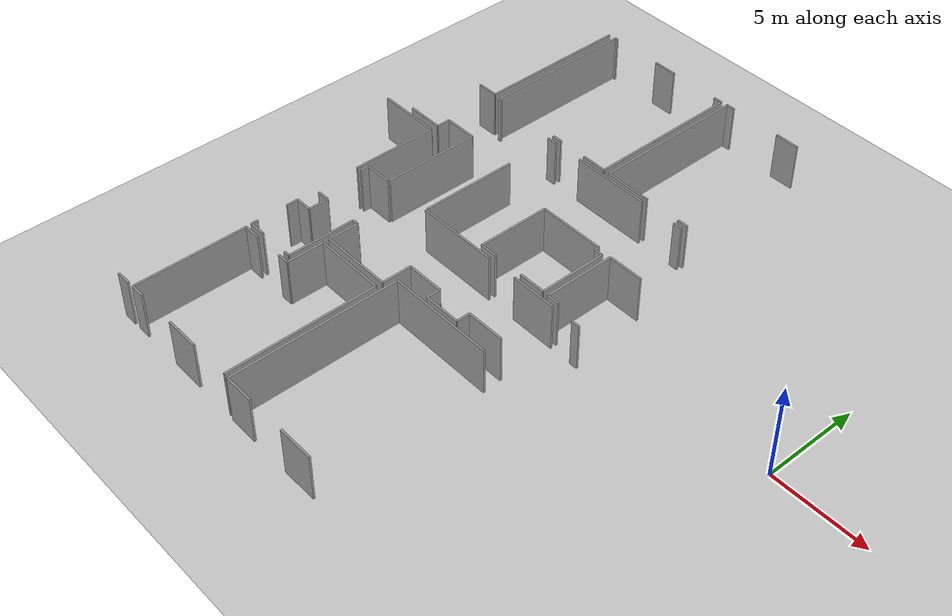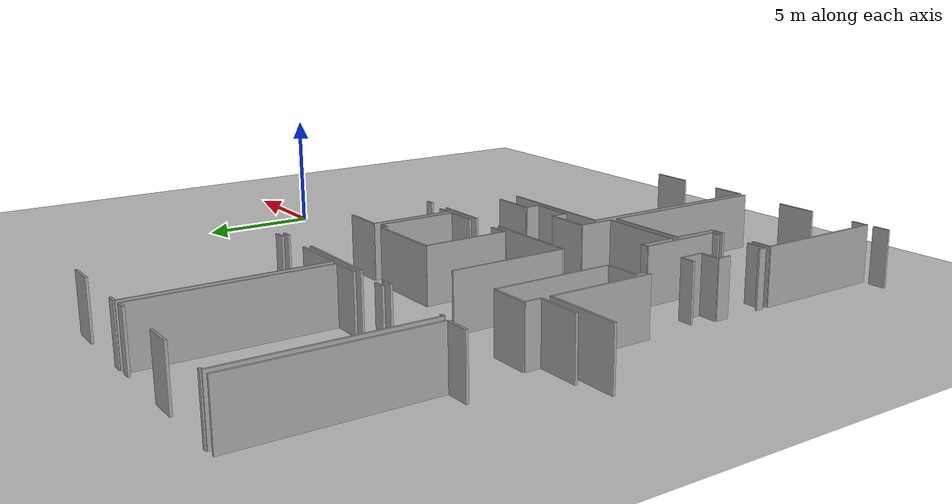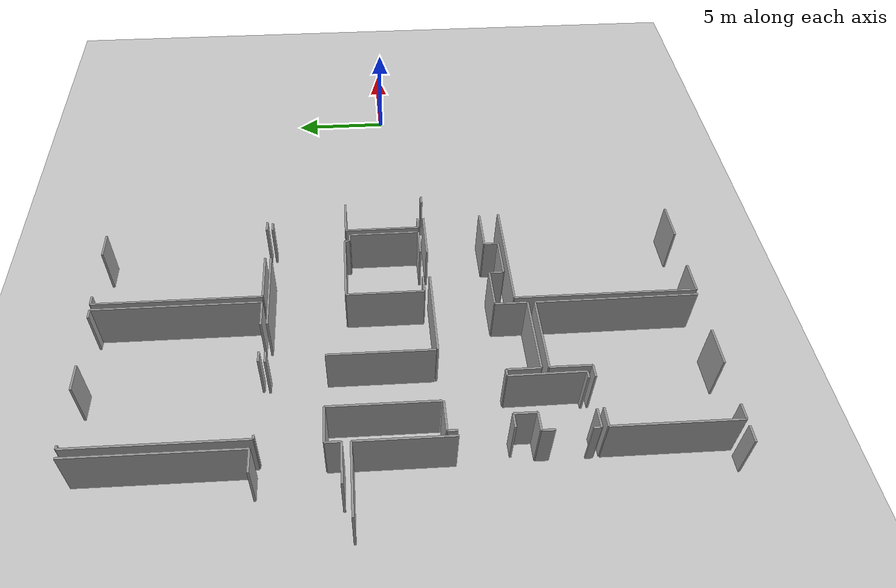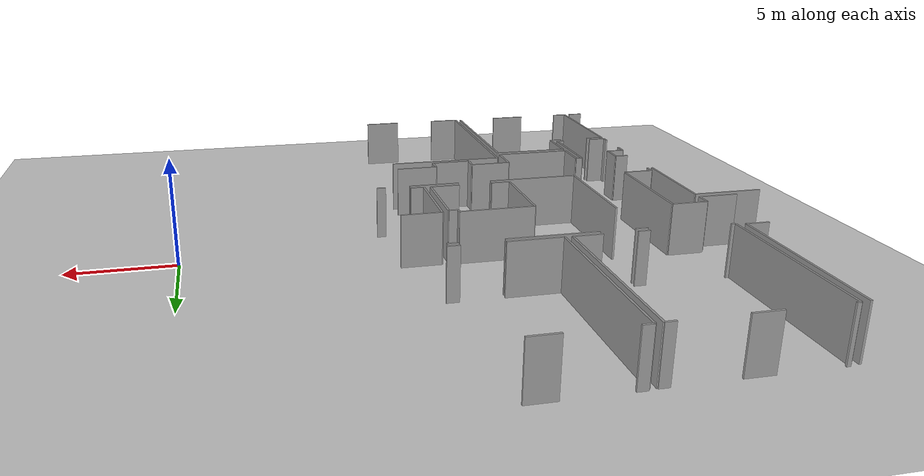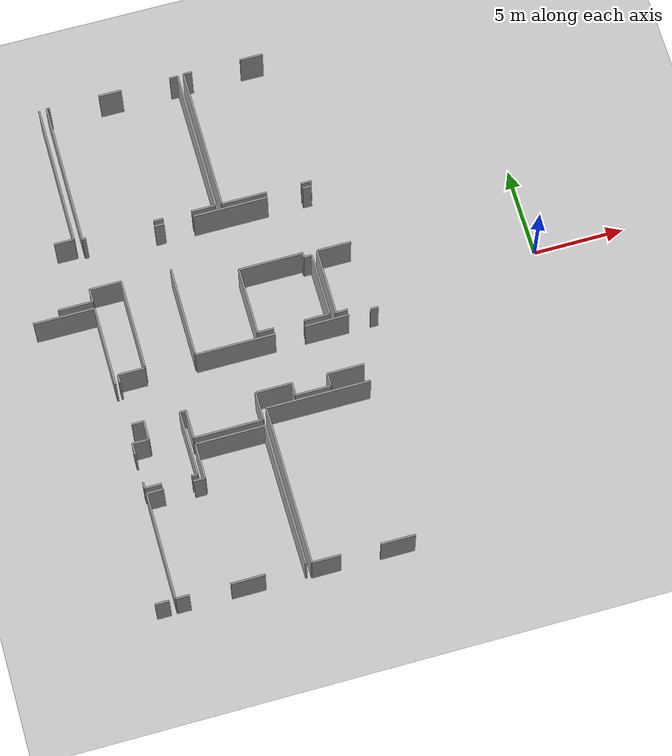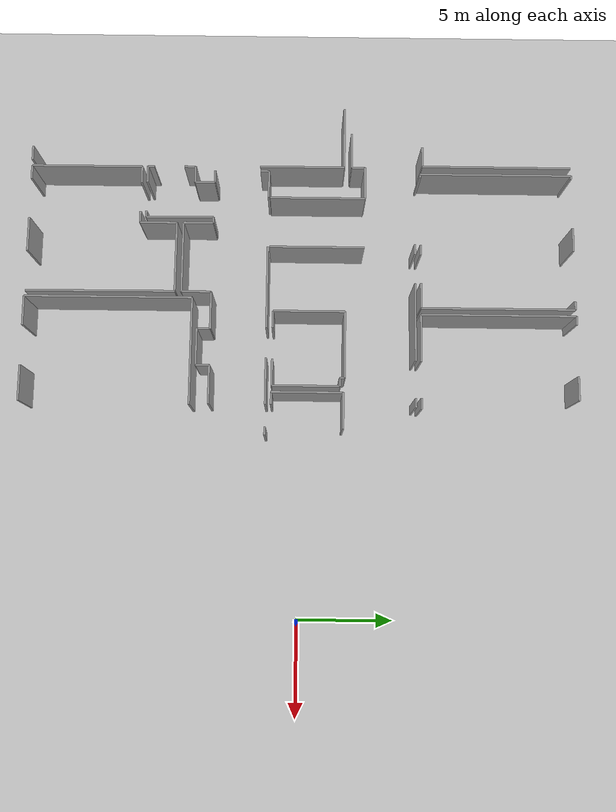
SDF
<sdf version="1.6">
 <world name="default">
  <model name="ground_plane">
   <static>1</static>
   <link name="link">
    <collision name="collision">
     <geometry><plane><normal>0 0 1</normal><size>100 100</size></plane></geometry>
     <surface><friction><ode><mu>100</mu><mu2>50</mu2></ode></friction></surface>
    </collision>
    <visual name="visual">
     <cast_shadows>0</cast_shadows>
     <geometry><plane><normal>0 0 1</normal><size>100 100</size></plane></geometry>
     <material>
      <script><uri>file://media/materials/scripts/gazebo.material</uri><name>Gazebo/Grey</name></script>
     </material>
    </visual>
   </link>
  </model>
  <model name="0510032262_A_40_1_104">
   <static>1</static>
   <link name="Wall_21">
    <collision name="Wall_21_Collision">
     <geometry><box><size>0.548910112003 0.1 2.5</size></box></geometry>
     <pose>0.274455056002 0 1.25 0 0 0</pose>
    </collision>
    <visual name="Wall_21_Visual">
     <pose>0.274455056002 0 1.25 0 0 0</pose>
     <geometry><box><size>0.548910112003 0.1 2.5</size></box></geometry>
     <material>
      <script><uri>file://media/materials/scripts/gazebo.material</uri><name>Gazebo/Grey</name></script>
      <ambient>1 1 1 1</ambient>
     </material>
    </visual>
    <pose>27.9376844243 -8.39673826824 0 0 0 0.0</pose>
   </link>
   <link name="Wall_22">
    <collision name="Wall_22_Collision">
     <geometry><box><size>4.13668813656 0.1 2.5</size></box></geometry>
     <pose>2.06834406828 0 1.25 0 0 0</pose>
    </collision>
    <visual name="Wall_22_Visual">
     <pose>2.06834406828 0 1.25 0 0 0</pose>
     <geometry><box><size>4.13668813656 0.1 2.5</size></box></geometry>
     <material>
      <script><uri>file://media/materials/scripts/gazebo.material</uri><name>Gazebo/Grey</name></script>
      <ambient>1 1 1 1</ambient>
     </material>
    </visual>
    <pose>30.0883967383 -8.39673826824 0 0 0 0.0</pose>
   </link>
   <link name="Wall_23">
    <collision name="Wall_23_Collision">
     <geometry><box><size>0.481771742234 0.1 2.5</size></box></geometry>
     <pose>0.240885871117 0 1.25 0 0 0</pose>
    </collision>
    <visual name="Wall_23_Visual">
     <pose>0.240885871117 0 1.25 0 0 0</pose>
     <geometry><box><size>0.481771742234 0.1 2.5</size></box></geometry>
     <material>
      <script><uri>file://media/materials/scripts/gazebo.material</uri><name>Gazebo/Grey</name></script>
      <ambient>1 1 1 1</ambient>
     </material>
    </visual>
    <pose>36.1908811118 -8.39673826824 0 0 0 0.0</pose>
   </link>
   <link name="Wall_34">
    <collision name="Wall_34_Collision">
     <geometry><box><size>5.01519814703 0.1 2.5</size></box></geometry>
     <pose>2.50759907352 0 1.25 0 0 0</pose>
    </collision>
    <visual name="Wall_34_Visual">
     <pose>2.50759907352 0 1.25 0 0 0</pose>
     <geometry><box><size>5.01519814703 0.1 2.5</size></box></geometry>
     <material>
      <script><uri>file://media/materials/scripts/gazebo.material</uri><name>Gazebo/Grey</name></script>
      <ambient>1 1 1 1</ambient>
     </material>
    </visual>
    <pose>28.161436685 -11.0702160739 0 0 0 -1.57079632679</pose>
   </link>
   <link name="Wall_35">
    <collision name="Wall_35_Collision">
     <geometry><box><size>5.04540406765 0.1 2.5</size></box></geometry>
     <pose>2.52270203382 0 1.25 0 0 0</pose>
    </collision>
    <visual name="Wall_35_Visual">
     <pose>2.52270203382 0 1.25 0 0 0</pose>
     <geometry><box><size>5.04540406765 0.1 2.5</size></box></geometry>
     <material>
      <script><uri>file://media/materials/scripts/gazebo.material</uri><name>Gazebo/Grey</name></script>
      <ambient>1 1 1 1</ambient>
     </material>
    </visual>
    <pose>25.4436653235 -16.0854142209 0 0 0 1.57079632679</pose>
   </link>
   <link name="Wall_36">
    <collision name="Wall_36_Collision">
     <geometry><box><size>1.72744867849 0.1 2.5</size></box></geometry>
     <pose>0.863724339245 0 1.25 0 0 0</pose>
    </collision>
    <visual name="Wall_36_Visual">
     <pose>0.863724339245 0 1.25 0 0 0</pose>
     <geometry><box><size>1.72744867849 0.1 2.5</size></box></geometry>
     <material>
      <script><uri>file://media/materials/scripts/gazebo.material</uri><name>Gazebo/Grey</name></script>
      <ambient>1 1 1 1</ambient>
     </material>
    </visual>
    <pose>25.4436653235 -11.0400101533 0 0 0 3.14159265359</pose>
   </link>
   <link name="Wall_37">
    <collision name="Wall_37_Collision">
     <geometry><box><size>0.710092965701 0.1 2.5</size></box></geometry>
     <pose>0.355046482851 0 1.25 0 0 0</pose>
    </collision>
    <visual name="Wall_37_Visual">
     <pose>0.355046482851 0 1.25 0 0 0</pose>
     <geometry><box><size>0.710092965701 0.1 2.5</size></box></geometry>
     <material>
      <script><uri>file://media/materials/scripts/gazebo.material</uri><name>Gazebo/Grey</name></script>
      <ambient>1 1 1 1</ambient>
     </material>
    </visual>
    <pose>23.716216645 -11.0400101533 0 0 0 -1.57079632679</pose>
   </link>
   <link name="Wall_38">
    <collision name="Wall_38_Collision">
     <geometry><box><size>1.90969952724 0.1 2.5</size></box></geometry>
     <pose>0.95484976362 0 1.25 0 0 0</pose>
    </collision>
    <visual name="Wall_38_Visual">
     <pose>0.95484976362 0 1.25 0 0 0</pose>
     <geometry><box><size>1.90969952724 0.1 2.5</size></box></geometry>
     <material>
      <script><uri>file://media/materials/scripts/gazebo.material</uri><name>Gazebo/Grey</name></script>
      <ambient>1 1 1 1</ambient>
     </material>
    </visual>
    <pose>23.716216645 -11.750103119 0 0 0 3.14159265359</pose>
   </link>
   <link name="Wall_47">
    <collision name="Wall_47_Collision">
     <geometry><box><size>1.08855538281 0.1 2.5</size></box></geometry>
     <pose>0.544277691405 0 1.25 0 0 0</pose>
    </collision>
    <visual name="Wall_47_Visual">
     <pose>0.544277691405 0 1.25 0 0 0</pose>
     <geometry><box><size>1.08855538281 0.1 2.5</size></box></geometry>
     <material>
      <script><uri>file://media/materials/scripts/gazebo.material</uri><name>Gazebo/Grey</name></script>
      <ambient>1 1 1 1</ambient>
     </material>
    </visual>
    <pose>23.6099882603 -7.97271313894 0 0 0 3.14159265359</pose>
   </link>
   <link name="Wall_51">
    <collision name="Wall_51_Collision">
     <geometry><box><size>7.91421825741 0.1 2.5</size></box></geometry>
     <pose>3.9571091287 0 1.25 0 0 0</pose>
    </collision>
    <visual name="Wall_51_Visual">
     <pose>3.9571091287 0 1.25 0 0 0</pose>
     <geometry><box><size>7.91421825741 0.1 2.5</size></box></geometry>
     <material>
      <script><uri>file://media/materials/scripts/gazebo.material</uri><name>Gazebo/Grey</name></script>
      <ambient>1 1 1 1</ambient>
     </material>
    </visual>
    <pose>23.6244566424 -0.058508106736 0 0 0 -1.57262447832</pose>
   </link>
   <link name="Wall_52">
    <collision name="Wall_52_Collision">
     <geometry><box><size>1.34238664848 0.1 2.5</size></box></geometry>
     <pose>0.671193324238 0 1.25 0 0 0</pose>
    </collision>
    <visual name="Wall_52_Visual">
     <pose>0.671193324238 0 1.25 0 0 0</pose>
     <geometry><box><size>1.34238664848 0.1 2.5</size></box></geometry>
     <material>
      <script><uri>file://media/materials/scripts/gazebo.material</uri><name>Gazebo/Grey</name></script>
      <ambient>1 1 1 1</ambient>
     </material>
    </visual>
    <pose>31.4178379922 -8.09607513405 0 0 0 3.14159265359</pose>
   </link>
   <link name="Wall_53">
    <collision name="Wall_53_Collision">
     <geometry><box><size>0.53444172986 0.1 2.5</size></box></geometry>
     <pose>0.26722086493 0 1.25 0 0 0</pose>
    </collision>
    <visual name="Wall_53_Visual">
     <pose>0.26722086493 0 1.25 0 0 0</pose>
     <geometry><box><size>0.53444172986 0.1 2.5</size></box></geometry>
     <material>
      <script><uri>file://media/materials/scripts/gazebo.material</uri><name>Gazebo/Grey</name></script>
      <ambient>1 1 1 1</ambient>
     </material>
    </visual>
    <pose>28.5099470127 -8.09607513405 0 0 0 3.14159265359</pose>
   </link>
   <link name="Wall_54">
    <collision name="Wall_54_Collision">
     <geometry><box><size>0.195576990196 0.1 2.5</size></box></geometry>
     <pose>0.0977884950979 0 1.25 0 0 0</pose>
    </collision>
    <visual name="Wall_54_Visual">
     <pose>0.0977884950979 0 1.25 0 0 0</pose>
     <geometry><box><size>0.195576990196 0.1 2.5</size></box></geometry>
     <material>
      <script><uri>file://media/materials/scripts/gazebo.material</uri><name>Gazebo/Grey</name></script>
      <ambient>1 1 1 1</ambient>
     </material>
    </visual>
    <pose>24.2399974617 -8.09607513405 0 0 0 3.14159265359</pose>
   </link>
   <link name="Wall_55">
    <collision name="Wall_55_Collision">
     <geometry><box><size>8.05431989085 0.1 2.5</size></box></geometry>
     <pose>4.02715994543 0 1.25 0 0 0</pose>
    </collision>
    <visual name="Wall_55_Visual">
     <pose>4.02715994543 0 1.25 0 0 0</pose>
     <geometry><box><size>8.05431989085 0.1 2.5</size></box></geometry>
     <material>
      <script><uri>file://media/materials/scripts/gazebo.material</uri><name>Gazebo/Grey</name></script>
      <ambient>1 1 1 1</ambient>
     </material>
    </visual>
    <pose>24.0444204715 -8.09607513405 0 0 0 1.57079632679</pose>
   </link>
   <link name="Wall_56">
    <collision name="Wall_56_Collision">
     <geometry><box><size>0.17247834502 0.1 2.5</size></box></geometry>
     <pose>0.0862391725101 0 1.25 0 0 0</pose>
    </collision>
    <visual name="Wall_56_Visual">
     <pose>0.0862391725101 0 1.25 0 0 0</pose>
     <geometry><box><size>0.17247834502 0.1 2.5</size></box></geometry>
     <material>
      <script><uri>file://media/materials/scripts/gazebo.material</uri><name>Gazebo/Grey</name></script>
      <ambient>1 1 1 1</ambient>
     </material>
    </visual>
    <pose>24.0444204715 -0.0417552432021 0 0 0 0.0</pose>
   </link>
   <link name="Wall_57">
    <collision name="Wall_57_Collision">
     <geometry><box><size>1.27385220675 0.1 2.5</size></box></geometry>
     <pose>0.636926103373 0 1.25 0 0 0</pose>
    </collision>
    <visual name="Wall_57_Visual">
     <pose>0.636926103373 0 1.25 0 0 0</pose>
     <geometry><box><size>1.27385220675 0.1 2.5</size></box></geometry>
     <material>
      <script><uri>file://media/materials/scripts/gazebo.material</uri><name>Gazebo/Grey</name></script>
      <ambient>1 1 1 1</ambient>
     </material>
    </visual>
    <pose>26.958530317 -0.0417552432021 0 0 0 0.0</pose>
   </link>
   <link name="Wall_58">
    <collision name="Wall_58_Collision">
     <geometry><box><size>0.458038518895 0.1 2.5</size></box></geometry>
     <pose>0.229019259447 0 1.25 0 0 0</pose>
    </collision>
    <visual name="Wall_58_Visual">
     <pose>0.229019259447 0 1.25 0 0 0</pose>
     <geometry><box><size>0.458038518895 0.1 2.5</size></box></geometry>
     <material>
      <script><uri>file://media/materials/scripts/gazebo.material</uri><name>Gazebo/Grey</name></script>
      <ambient>1 1 1 1</ambient>
     </material>
    </visual>
    <pose>30.9520576197 -0.0417552432021 0 0 0 0.0</pose>
   </link>
   <link name="Wall_59">
    <collision name="Wall_59_Collision">
     <geometry><box><size>8.05432361161 0.1 2.5</size></box></geometry>
     <pose>4.0271618058 0 1.25 0 0 0</pose>
    </collision>
    <visual name="Wall_59_Visual">
     <pose>4.0271618058 0 1.25 0 0 0</pose>
     <geometry><box><size>8.05432361161 0.1 2.5</size></box></geometry>
     <material>
      <script><uri>file://media/materials/scripts/gazebo.material</uri><name>Gazebo/Grey</name></script>
      <ambient>1 1 1 1</ambient>
     </material>
    </visual>
    <pose>31.4100961386 -0.0417552432021 0 0 0 -1.56983512196</pose>
   </link>
   <link name="Wall_61">
    <collision name="Wall_61_Collision">
     <geometry><box><size>0.575816226164 0.1 2.5</size></box></geometry>
     <pose>0.287908113082 0 1.25 0 0 0</pose>
    </collision>
    <visual name="Wall_61_Visual">
     <pose>0.287908113082 0 1.25 0 0 0</pose>
     <geometry><box><size>0.575816226164 0.1 2.5</size></box></geometry>
     <material>
      <script><uri>file://media/materials/scripts/gazebo.material</uri><name>Gazebo/Grey</name></script>
      <ambient>1 1 1 1</ambient>
     </material>
    </visual>
    <pose>36.7580670749 -8.1105435162 0 0 0 3.14159265359</pose>
   </link>
   <link name="Wall_62">
    <collision name="Wall_62_Collision">
     <geometry><box><size>2.4951613415 0.1 2.5</size></box></geometry>
     <pose>1.24758067075 0 1.25 0 0 0</pose>
    </collision>
    <visual name="Wall_62_Visual">
     <pose>1.24758067075 0 1.25 0 0 0</pose>
     <geometry><box><size>2.4951613415 0.1 2.5</size></box></geometry>
     <material>
      <script><uri>file://media/materials/scripts/gazebo.material</uri><name>Gazebo/Grey</name></script>
      <ambient>1 1 1 1</ambient>
     </material>
    </visual>
    <pose>34.253387061 -8.1105435162 0 0 0 3.14159265359</pose>
   </link>
   <link name="Wall_63">
    <collision name="Wall_63_Collision">
     <geometry><box><size>8.1105435162 0.1 2.5</size></box></geometry>
     <pose>4.0552717581 0 1.25 0 0 0</pose>
    </collision>
    <visual name="Wall_63_Visual">
     <pose>4.0552717581 0 1.25 0 0 0</pose>
     <geometry><box><size>8.1105435162 0.1 2.5</size></box></geometry>
     <material>
      <script><uri>file://media/materials/scripts/gazebo.material</uri><name>Gazebo/Grey</name></script>
      <ambient>1 1 1 1</ambient>
     </material>
    </visual>
    <pose>31.7582257195 -8.1105435162 0 0 0 1.57079632679</pose>
   </link>
   <link name="Wall_64">
    <collision name="Wall_64_Collision">
     <geometry><box><size>0.461465240981 0.1 2.5</size></box></geometry>
     <pose>0.230732620491 0 1.25 0 0 0</pose>
    </collision>
    <visual name="Wall_64_Visual">
     <pose>0.230732620491 0 1.25 0 0 0</pose>
     <geometry><box><size>0.461465240981 0.1 2.5</size></box></geometry>
     <material>
      <script><uri>file://media/materials/scripts/gazebo.material</uri><name>Gazebo/Grey</name></script>
      <ambient>1 1 1 1</ambient>
     </material>
    </visual>
    <pose>31.7582257195 -0.0 0 0 0 0.0</pose>
   </link>
   <link name="Wall_65">
    <collision name="Wall_65_Collision">
     <geometry><box><size>1.28514769807 0.1 2.5</size></box></geometry>
     <pose>0.642573849034 0 1.25 0 0 0</pose>
    </collision>
    <visual name="Wall_65_Visual">
     <pose>0.642573849034 0 1.25 0 0 0</pose>
     <geometry><box><size>1.28514769807 0.1 2.5</size></box></geometry>
     <material>
      <script><uri>file://media/materials/scripts/gazebo.material</uri><name>Gazebo/Grey</name></script>
      <ambient>1 1 1 1</ambient>
     </material>
    </visual>
    <pose>34.948503982 -0.0 0 0 0 0.0</pose>
   </link>
   <link name="Wall_86">
    <collision name="Wall_86_Collision">
     <geometry><box><size>4.49179807723 0.1 2.5</size></box></geometry>
     <pose>2.24589903861 0 1.25 0 0 0</pose>
    </collision>
    <visual name="Wall_86_Visual">
     <pose>2.24589903861 0 1.25 0 0 0</pose>
     <geometry><box><size>4.49179807723 0.1 2.5</size></box></geometry>
     <material>
      <script><uri>file://media/materials/scripts/gazebo.material</uri><name>Gazebo/Grey</name></script>
      <ambient>1 1 1 1</ambient>
     </material>
    </visual>
    <pose>23.709997779 -16.6434622585 0 0 0 1.57079632679</pose>
   </link>
   <link name="Wall_87">
    <collision name="Wall_87_Collision">
     <geometry><box><size>3.34003870927 0.1 2.5</size></box></geometry>
     <pose>1.67001935463 0 1.25 0 0 0</pose>
    </collision>
    <visual name="Wall_87_Visual">
     <pose>1.67001935463 0 1.25 0 0 0</pose>
     <geometry><box><size>3.34003870927 0.1 2.5</size></box></geometry>
     <material>
      <script><uri>file://media/materials/scripts/gazebo.material</uri><name>Gazebo/Grey</name></script>
      <ambient>1 1 1 1</ambient>
     </material>
    </visual>
    <pose>23.709997779 -12.1516641812 0 0 0 3.14159265359</pose>
   </link>
   <link name="Wall_111">
    <collision name="Wall_111_Collision">
     <geometry><box><size>0.771012469461 0.1 2.5</size></box></geometry>
     <pose>0.38550623473 0 1.25 0 0 0</pose>
    </collision>
    <visual name="Wall_111_Visual">
     <pose>0.38550623473 0 1.25 0 0 0</pose>
     <geometry><box><size>0.771012469461 0.1 2.5</size></box></geometry>
     <material>
      <script><uri>file://media/materials/scripts/gazebo.material</uri><name>Gazebo/Grey</name></script>
      <ambient>1 1 1 1</ambient>
     </material>
    </visual>
    <pose>23.458704826 -28.8584573405 0 0 0 3.14159265359</pose>
   </link>
   <link name="Wall_118">
    <collision name="Wall_118_Collision">
     <geometry><box><size>1.83888060412 0.1 2.5</size></box></geometry>
     <pose>0.919440302059 0 1.25 0 0 0</pose>
    </collision>
    <visual name="Wall_118_Visual">
     <pose>0.919440302059 0 1.25 0 0 0</pose>
     <geometry><box><size>1.83888060412 0.1 2.5</size></box></geometry>
     <material>
      <script><uri>file://media/materials/scripts/gazebo.material</uri><name>Gazebo/Grey</name></script>
      <ambient>1 1 1 1</ambient>
     </material>
    </visual>
    <pose>28.5327918266 -28.8483040899 0 0 0 3.14159265359</pose>
   </link>
   <link name="Wall_119">
    <collision name="Wall_119_Collision">
     <geometry><box><size>0.740171970682 0.1 2.5</size></box></geometry>
     <pose>0.370085985341 0 1.25 0 0 0</pose>
    </collision>
    <visual name="Wall_119_Visual">
     <pose>0.370085985341 0 1.25 0 0 0</pose>
     <geometry><box><size>0.740171970682 0.1 2.5</size></box></geometry>
     <material>
      <script><uri>file://media/materials/scripts/gazebo.material</uri><name>Gazebo/Grey</name></script>
      <ambient>1 1 1 1</ambient>
     </material>
    </visual>
    <pose>24.5242884792 -28.8483040899 0 0 0 3.14159265359</pose>
   </link>
   <link name="Wall_120">
    <collision name="Wall_120_Collision">
     <geometry><box><size>5.89104292921 0.1 2.5</size></box></geometry>
     <pose>2.94552146461 0 1.25 0 0 0</pose>
    </collision>
    <visual name="Wall_120_Visual">
     <pose>2.94552146461 0 1.25 0 0 0</pose>
     <geometry><box><size>5.89104292921 0.1 2.5</size></box></geometry>
     <material>
      <script><uri>file://media/materials/scripts/gazebo.material</uri><name>Gazebo/Grey</name></script>
      <ambient>1 1 1 1</ambient>
     </material>
    </visual>
    <pose>23.7841165086 -28.8483040899 0 0 0 1.57079632679</pose>
   </link>
   <link name="Wall_121">
    <collision name="Wall_121_Collision">
     <geometry><box><size>0.907066027858 0.1 2.5</size></box></geometry>
     <pose>0.453533013929 0 1.25 0 0 0</pose>
    </collision>
    <visual name="Wall_121_Visual">
     <pose>0.453533013929 0 1.25 0 0 0</pose>
     <geometry><box><size>0.907066027858 0.1 2.5</size></box></geometry>
     <material>
      <script><uri>file://media/materials/scripts/gazebo.material</uri><name>Gazebo/Grey</name></script>
      <ambient>1 1 1 1</ambient>
     </material>
    </visual>
    <pose>23.7841165086 -22.9572611606 0 0 0 0.0</pose>
   </link>
   <link name="Wall_122">
    <collision name="Wall_122_Collision">
     <geometry><box><size>0.617444553733 0.1 2.5</size></box></geometry>
     <pose>0.308722276866 0 1.25 0 0 0</pose>
    </collision>
    <visual name="Wall_122_Visual">
     <pose>0.308722276866 0 1.25 0 0 0</pose>
     <geometry><box><size>0.617444553733 0.1 2.5</size></box></geometry>
     <material>
      <script><uri>file://media/materials/scripts/gazebo.material</uri><name>Gazebo/Grey</name></script>
      <ambient>1 1 1 1</ambient>
     </material>
    </visual>
    <pose>26.2865120411 -22.9572611606 0 0 0 0.0</pose>
   </link>
   <link name="Wall_123">
    <collision name="Wall_123_Collision">
     <geometry><box><size>1.95310467367 0.1 2.5</size></box></geometry>
     <pose>0.976552336834 0 1.25 0 0 0</pose>
    </collision>
    <visual name="Wall_123_Visual">
     <pose>0.976552336834 0 1.25 0 0 0</pose>
     <geometry><box><size>1.95310467367 0.1 2.5</size></box></geometry>
     <material>
      <script><uri>file://media/materials/scripts/gazebo.material</uri><name>Gazebo/Grey</name></script>
      <ambient>1 1 1 1</ambient>
     </material>
    </visual>
    <pose>26.9039565949 -22.9572611606 0 0 0 1.57079632679</pose>
   </link>
   <link name="Wall_124">
    <collision name="Wall_124_Collision">
     <geometry><box><size>3.74832630009 0.1 2.5</size></box></geometry>
     <pose>1.87416315005 0 1.25 0 0 0</pose>
    </collision>
    <visual name="Wall_124_Visual">
     <pose>1.87416315005 0 1.25 0 0 0</pose>
     <geometry><box><size>3.74832630009 0.1 2.5</size></box></geometry>
     <material>
      <script><uri>file://media/materials/scripts/gazebo.material</uri><name>Gazebo/Grey</name></script>
      <ambient>1 1 1 1</ambient>
     </material>
    </visual>
    <pose>26.9039565949 -21.004156487 0 0 0 0.0</pose>
   </link>
   <link name="Wall_125">
    <collision name="Wall_125_Collision">
     <geometry><box><size>7.84424000766 0.1 2.5</size></box></geometry>
     <pose>3.92212000383 0 1.25 0 0 0</pose>
    </collision>
    <visual name="Wall_125_Visual">
     <pose>3.92212000383 0 1.25 0 0 0</pose>
     <geometry><box><size>7.84424000766 0.1 2.5</size></box></geometry>
     <material>
      <script><uri>file://media/materials/scripts/gazebo.material</uri><name>Gazebo/Grey</name></script>
      <ambient>1 1 1 1</ambient>
     </material>
    </visual>
    <pose>30.6522828949 -21.004156487 0 0 0 -1.56594246723</pose>
   </link>
   <link name="Wall_126">
    <collision name="Wall_126_Collision">
     <geometry><box><size>0.342164546118 0.1 2.5</size></box></geometry>
     <pose>0.171082273059 0 1.25 0 0 0</pose>
    </collision>
    <visual name="Wall_126_Visual">
     <pose>0.171082273059 0 1.25 0 0 0</pose>
     <geometry><box><size>0.342164546118 0.1 2.5</size></box></geometry>
     <material>
      <script><uri>file://media/materials/scripts/gazebo.material</uri><name>Gazebo/Grey</name></script>
      <ambient>1 1 1 1</ambient>
     </material>
    </visual>
    <pose>26.5942824507 -22.647079354 0 0 0 3.14159265359</pose>
   </link>
   <link name="Wall_127">
    <collision name="Wall_127_Collision">
     <geometry><box><size>0.902116318177 0.1 2.5</size></box></geometry>
     <pose>0.451058159089 0 1.25 0 0 0</pose>
    </collision>
    <visual name="Wall_127_Visual">
     <pose>0.451058159089 0 1.25 0 0 0</pose>
     <geometry><box><size>0.902116318177 0.1 2.5</size></box></geometry>
     <material>
      <script><uri>file://media/materials/scripts/gazebo.material</uri><name>Gazebo/Grey</name></script>
      <ambient>1 1 1 1</ambient>
     </material>
    </visual>
    <pose>24.6567883999 -22.647079354 0 0 0 3.14159265359</pose>
   </link>
   <link name="Wall_128">
    <collision name="Wall_128_Collision">
     <geometry><box><size>0.340641558524 0.1 2.5</size></box></geometry>
     <pose>0.170320779262 0 1.25 0 0 0</pose>
    </collision>
    <visual name="Wall_128_Visual">
     <pose>0.170320779262 0 1.25 0 0 0</pose>
     <geometry><box><size>0.340641558524 0.1 2.5</size></box></geometry>
     <material>
      <script><uri>file://media/materials/scripts/gazebo.material</uri><name>Gazebo/Grey</name></script>
      <ambient>1 1 1 1</ambient>
     </material>
    </visual>
    <pose>23.7546720817 -22.647079354 0 0 0 1.57079632679</pose>
   </link>
   <link name="Wall_129">
    <collision name="Wall_129_Collision">
     <geometry><box><size>0.607037471841 0.1 2.5</size></box></geometry>
     <pose>0.30351873592 0 1.25 0 0 0</pose>
    </collision>
    <visual name="Wall_129_Visual">
     <pose>0.30351873592 0 1.25 0 0 0</pose>
     <geometry><box><size>0.607037471841 0.1 2.5</size></box></geometry>
     <material>
      <script><uri>file://media/materials/scripts/gazebo.material</uri><name>Gazebo/Grey</name></script>
      <ambient>1 1 1 1</ambient>
     </material>
    </visual>
    <pose>23.7546720817 -20.7047625091 0 0 0 1.57079632679</pose>
   </link>
   <link name="Wall_130">
    <collision name="Wall_130_Collision">
     <geometry><box><size>0.875210204017 0.1 2.5</size></box></geometry>
     <pose>0.437605102008 0 1.25 0 0 0</pose>
    </collision>
    <visual name="Wall_130_Visual">
     <pose>0.437605102008 0 1.25 0 0 0</pose>
     <geometry><box><size>0.875210204017 0.1 2.5</size></box></geometry>
     <material>
      <script><uri>file://media/materials/scripts/gazebo.material</uri><name>Gazebo/Grey</name></script>
      <ambient>1 1 1 1</ambient>
     </material>
    </visual>
    <pose>23.7546720817 -20.0977250373 0 0 0 0.0</pose>
   </link>
   <link name="Wall_131">
    <collision name="Wall_131_Collision">
     <geometry><box><size>1.04845004283 0.1 2.5</size></box></geometry>
     <pose>0.524225021417 0 1.25 0 0 0</pose>
    </collision>
    <visual name="Wall_131_Visual">
     <pose>0.524225021417 0 1.25 0 0 0</pose>
     <geometry><box><size>1.04845004283 0.1 2.5</size></box></geometry>
     <material>
      <script><uri>file://media/materials/scripts/gazebo.material</uri><name>Gazebo/Grey</name></script>
      <ambient>1 1 1 1</ambient>
     </material>
    </visual>
    <pose>24.6298822858 -20.0977250373 0 0 0 1.57079632679</pose>
   </link>
   <link name="Wall_132">
    <collision name="Wall_132_Collision">
     <geometry><box><size>0.662245772123 0.1 2.5</size></box></geometry>
     <pose>0.331122886061 0 1.25 0 0 0</pose>
    </collision>
    <visual name="Wall_132_Visual">
     <pose>0.331122886061 0 1.25 0 0 0</pose>
     <geometry><box><size>0.662245772123 0.1 2.5</size></box></geometry>
     <material>
      <script><uri>file://media/materials/scripts/gazebo.material</uri><name>Gazebo/Grey</name></script>
      <ambient>1 1 1 1</ambient>
     </material>
    </visual>
    <pose>24.6298822858 -19.0492749944 0 0 0 3.14159265359</pose>
   </link>
   <link name="Wall_133">
    <collision name="Wall_133_Collision">
     <geometry><box><size>0.460576831551 0.1 2.5</size></box></geometry>
     <pose>0.230288415776 0 1.25 0 0 0</pose>
    </collision>
    <visual name="Wall_133_Visual">
     <pose>0.230288415776 0 1.25 0 0 0</pose>
     <geometry><box><size>0.460576831551 0.1 2.5</size></box></geometry>
     <material>
      <script><uri>file://media/materials/scripts/gazebo.material</uri><name>Gazebo/Grey</name></script>
      <ambient>1 1 1 1</ambient>
     </material>
    </visual>
    <pose>23.9676365136 -16.6251864073 0 0 0 1.57079632679</pose>
   </link>
   <link name="Wall_134">
    <collision name="Wall_134_Collision">
     <geometry><box><size>1.46638322175 0.1 2.5</size></box></geometry>
     <pose>0.733191610877 0 1.25 0 0 0</pose>
    </collision>
    <visual name="Wall_134_Visual">
     <pose>0.733191610877 0 1.25 0 0 0</pose>
     <geometry><box><size>1.46638322175 0.1 2.5</size></box></geometry>
     <material>
      <script><uri>file://media/materials/scripts/gazebo.material</uri><name>Gazebo/Grey</name></script>
      <ambient>1 1 1 1</ambient>
     </material>
    </visual>
    <pose>23.9676365136 -16.1646095758 0 0 0 0.0</pose>
   </link>
   <link name="Wall_135">
    <collision name="Wall_135_Collision">
     <geometry><box><size>4.37275121363 0.1 2.5</size></box></geometry>
     <pose>2.18637560682 0 1.25 0 0 0</pose>
    </collision>
    <visual name="Wall_135_Visual">
     <pose>2.18637560682 0 1.25 0 0 0</pose>
     <geometry><box><size>4.37275121363 0.1 2.5</size></box></geometry>
     <material>
      <script><uri>file://media/materials/scripts/gazebo.material</uri><name>Gazebo/Grey</name></script>
      <ambient>1 1 1 1</ambient>
     </material>
    </visual>
    <pose>28.1641019133 -16.1646095758 0 0 0 0.0</pose>
   </link>
   <link name="Wall_136">
    <collision name="Wall_136_Collision">
     <geometry><box><size>2.43068820002 0.1 2.5</size></box></geometry>
     <pose>1.21534410001 0 1.25 0 0 0</pose>
    </collision>
    <visual name="Wall_136_Visual">
     <pose>1.21534410001 0 1.25 0 0 0</pose>
     <geometry><box><size>2.43068820002 0.1 2.5</size></box></geometry>
     <material>
      <script><uri>file://media/materials/scripts/gazebo.material</uri><name>Gazebo/Grey</name></script>
      <ambient>1 1 1 1</ambient>
     </material>
    </visual>
    <pose>34.1518545547 -16.1646095758 0 0 0 0.0</pose>
   </link>
   <link name="Wall_137">
    <collision name="Wall_137_Collision">
     <geometry><box><size>0.435320620617 0.1 2.5</size></box></geometry>
     <pose>0.217660310309 0 1.25 0 0 0</pose>
    </collision>
    <visual name="Wall_137_Visual">
     <pose>0.217660310309 0 1.25 0 0 0</pose>
     <geometry><box><size>0.435320620617 0.1 2.5</size></box></geometry>
     <material>
      <script><uri>file://media/materials/scripts/gazebo.material</uri><name>Gazebo/Grey</name></script>
      <ambient>1 1 1 1</ambient>
     </material>
    </visual>
    <pose>37.7600659961 -16.1646095758 0 0 0 0.0</pose>
   </link>
   <link name="Wall_171">
    <collision name="Wall_171_Collision">
     <geometry><box><size>2.02151219977 0.1 2.5</size></box></geometry>
     <pose>1.01075609988 0 1.25 0 0 0</pose>
    </collision>
    <visual name="Wall_171_Visual">
     <pose>1.01075609988 0 1.25 0 0 0</pose>
     <geometry><box><size>2.02151219977 0.1 2.5</size></box></geometry>
     <material>
      <script><uri>file://media/materials/scripts/gazebo.material</uri><name>Gazebo/Grey</name></script>
      <ambient>1 1 1 1</ambient>
     </material>
    </visual>
    <pose>36.5944728242 -19.0896341657 0 0 0 3.14159265359</pose>
   </link>
   <link name="Wall_172">
    <collision name="Wall_172_Collision">
     <geometry><box><size>0.704508677856 0.1 2.5</size></box></geometry>
     <pose>0.352254338928 0 1.25 0 0 0</pose>
    </collision>
    <visual name="Wall_172_Visual">
     <pose>0.352254338928 0 1.25 0 0 0</pose>
     <geometry><box><size>0.704508677856 0.1 2.5</size></box></geometry>
     <material>
      <script><uri>file://media/materials/scripts/gazebo.material</uri><name>Gazebo/Grey</name></script>
      <ambient>1 1 1 1</ambient>
     </material>
    </visual>
    <pose>34.5729606244 -19.0896341657 0 0 0 -1.57079632679</pose>
   </link>
   <link name="Wall_173">
    <collision name="Wall_173_Collision">
     <geometry><box><size>1.93597106324 0.1 2.5</size></box></geometry>
     <pose>0.967985531618 0 1.25 0 0 0</pose>
    </collision>
    <visual name="Wall_173_Visual">
     <pose>0.967985531618 0 1.25 0 0 0</pose>
     <geometry><box><size>1.93597106324 0.1 2.5</size></box></geometry>
     <material>
      <script><uri>file://media/materials/scripts/gazebo.material</uri><name>Gazebo/Grey</name></script>
      <ambient>1 1 1 1</ambient>
     </material>
    </visual>
    <pose>34.5729606244 -19.7941428435 0 0 0 3.14159265359</pose>
   </link>
   <link name="Wall_174">
    <collision name="Wall_174_Collision">
     <geometry><box><size>0.700955040137 0.1 2.5</size></box></geometry>
     <pose>0.350477520069 0 1.25 0 0 0</pose>
    </collision>
    <visual name="Wall_174_Visual">
     <pose>0.350477520069 0 1.25 0 0 0</pose>
     <geometry><box><size>0.700955040137 0.1 2.5</size></box></geometry>
     <material>
      <script><uri>file://media/materials/scripts/gazebo.material</uri><name>Gazebo/Grey</name></script>
      <ambient>1 1 1 1</ambient>
     </material>
    </visual>
    <pose>32.6369895612 -19.7941428435 0 0 0 1.57079632679</pose>
   </link>
   <link name="Wall_175">
    <collision name="Wall_175_Collision">
     <geometry><box><size>1.97772630644 0.1 2.5</size></box></geometry>
     <pose>0.988863153219 0 1.25 0 0 0</pose>
    </collision>
    <visual name="Wall_175_Visual">
     <pose>0.988863153219 0 1.25 0 0 0</pose>
     <geometry><box><size>1.97772630644 0.1 2.5</size></box></geometry>
     <material>
      <script><uri>file://media/materials/scripts/gazebo.material</uri><name>Gazebo/Grey</name></script>
      <ambient>1 1 1 1</ambient>
     </material>
    </visual>
    <pose>32.6369895612 -19.0931878034 0 0 0 3.14159265359</pose>
   </link>
   <link name="Wall_176">
    <collision name="Wall_176_Collision">
     <geometry><box><size>1.56106228385 0.1 2.5</size></box></geometry>
     <pose>0.780531141923 0 1.25 0 0 0</pose>
    </collision>
    <visual name="Wall_176_Visual">
     <pose>0.780531141923 0 1.25 0 0 0</pose>
     <geometry><box><size>1.56106228385 0.1 2.5</size></box></geometry>
     <material>
      <script><uri>file://media/materials/scripts/gazebo.material</uri><name>Gazebo/Grey</name></script>
      <ambient>1 1 1 1</ambient>
     </material>
    </visual>
    <pose>30.6592632548 -19.0931878034 0 0 0 -1.57079632679</pose>
   </link>
   <link name="Wall_177">
    <collision name="Wall_177_Collision">
     <geometry><box><size>3.76660215122 0.1 2.5</size></box></geometry>
     <pose>1.88330107561 0 1.25 0 0 0</pose>
    </collision>
    <visual name="Wall_177_Visual">
     <pose>1.88330107561 0 1.25 0 0 0</pose>
     <geometry><box><size>3.76660215122 0.1 2.5</size></box></geometry>
     <material>
      <script><uri>file://media/materials/scripts/gazebo.material</uri><name>Gazebo/Grey</name></script>
      <ambient>1 1 1 1</ambient>
     </material>
    </visual>
    <pose>30.6592632548 -20.6542500873 0 0 0 3.14159265359</pose>
   </link>
   <link name="Wall_178">
    <collision name="Wall_178_Collision">
     <geometry><box><size>1.57476917219 0.1 2.5</size></box></geometry>
     <pose>0.787384586096 0 1.25 0 0 0</pose>
    </collision>
    <visual name="Wall_178_Visual">
     <pose>0.787384586096 0 1.25 0 0 0</pose>
     <geometry><box><size>1.57476917219 0.1 2.5</size></box></geometry>
     <material>
      <script><uri>file://media/materials/scripts/gazebo.material</uri><name>Gazebo/Grey</name></script>
      <ambient>1 1 1 1</ambient>
     </material>
    </visual>
    <pose>26.8926611035 -20.6542500873 0 0 0 1.57079632679</pose>
   </link>
   <link name="Wall_179">
    <collision name="Wall_179_Collision">
     <geometry><box><size>0.326173176381 0.1 2.5</size></box></geometry>
     <pose>0.163086588191 0 1.25 0 0 0</pose>
    </collision>
    <visual name="Wall_179_Visual">
     <pose>0.163086588191 0 1.25 0 0 0</pose>
     <geometry><box><size>0.326173176381 0.1 2.5</size></box></geometry>
     <material>
      <script><uri>file://media/materials/scripts/gazebo.material</uri><name>Gazebo/Grey</name></script>
      <ambient>1 1 1 1</ambient>
     </material>
    </visual>
    <pose>26.8926611035 -19.0794809151 0 0 0 3.14159265359</pose>
   </link>
   <link name="Wall_180">
    <collision name="Wall_180_Collision">
     <geometry><box><size>3.56770670838 0.1 2.5</size></box></geometry>
     <pose>1.78385335419 0 1.25 0 0 0</pose>
    </collision>
    <visual name="Wall_180_Visual">
     <pose>1.78385335419 0 1.25 0 0 0</pose>
     <geometry><box><size>3.56770670838 0.1 2.5</size></box></geometry>
     <material>
      <script><uri>file://media/materials/scripts/gazebo.material</uri><name>Gazebo/Grey</name></script>
      <ambient>1 1 1 1</ambient>
     </material>
    </visual>
    <pose>26.5664879272 -19.0794809151 0 0 0 -1.56300566264</pose>
   </link>
   <link name="Wall_181">
    <collision name="Wall_181_Collision">
     <geometry><box><size>1.42031284703 0.1 2.5</size></box></geometry>
     <pose>0.710156423517 0 1.25 0 0 0</pose>
    </collision>
    <visual name="Wall_181_Visual">
     <pose>0.710156423517 0 1.25 0 0 0</pose>
     <geometry><box><size>1.42031284703 0.1 2.5</size></box></geometry>
     <material>
      <script><uri>file://media/materials/scripts/gazebo.material</uri><name>Gazebo/Grey</name></script>
      <ambient>1 1 1 1</ambient>
     </material>
    </visual>
    <pose>35.6160802107 -15.8383094838 0 0 0 3.14159265359</pose>
   </link>
   <link name="Wall_182">
    <collision name="Wall_182_Collision">
     <geometry><box><size>0.905035377733 0.1 2.5</size></box></geometry>
     <pose>0.452517688866 0 1.25 0 0 0</pose>
    </collision>
    <visual name="Wall_182_Visual">
     <pose>0.452517688866 0 1.25 0 0 0</pose>
     <geometry><box><size>0.905035377733 0.1 2.5</size></box></geometry>
     <material>
      <script><uri>file://media/materials/scripts/gazebo.material</uri><name>Gazebo/Grey</name></script>
      <ambient>1 1 1 1</ambient>
     </material>
    </visual>
    <pose>32.5538598217 -15.8383094838 0 0 0 3.14159265359</pose>
   </link>
   <link name="Wall_183">
    <collision name="Wall_183_Collision">
     <geometry><box><size>3.7638100073 0.1 2.5</size></box></geometry>
     <pose>1.88190500365 0 1.25 0 0 0</pose>
    </collision>
    <visual name="Wall_183_Visual">
     <pose>1.88190500365 0 1.25 0 0 0</pose>
     <geometry><box><size>3.7638100073 0.1 2.5</size></box></geometry>
     <material>
      <script><uri>file://media/materials/scripts/gazebo.material</uri><name>Gazebo/Grey</name></script>
      <ambient>1 1 1 1</ambient>
     </material>
    </visual>
    <pose>31.648824444 -15.8383094838 0 0 0 1.57079632679</pose>
   </link>
   <link name="Wall_184">
    <collision name="Wall_184_Collision">
     <geometry><box><size>3.52051273916 0.1 2.5</size></box></geometry>
     <pose>1.76025636958 0 1.25 0 0 0</pose>
    </collision>
    <visual name="Wall_184_Visual">
     <pose>1.76025636958 0 1.25 0 0 0</pose>
     <geometry><box><size>3.52051273916 0.1 2.5</size></box></geometry>
     <material>
      <script><uri>file://media/materials/scripts/gazebo.material</uri><name>Gazebo/Grey</name></script>
      <ambient>1 1 1 1</ambient>
     </material>
    </visual>
    <pose>31.648824444 -12.0744994765 0 0 0 0.0</pose>
   </link>
   <link name="Wall_185">
    <collision name="Wall_185_Collision">
     <geometry><box><size>0.242662689977 0.1 2.5</size></box></geometry>
     <pose>0.121331344988 0 1.25 0 0 0</pose>
    </collision>
    <visual name="Wall_185_Visual">
     <pose>0.121331344988 0 1.25 0 0 0</pose>
     <geometry><box><size>0.242662689977 0.1 2.5</size></box></geometry>
     <material>
      <script><uri>file://media/materials/scripts/gazebo.material</uri><name>Gazebo/Grey</name></script>
      <ambient>1 1 1 1</ambient>
     </material>
    </visual>
    <pose>35.1693371831 -12.0744994765 0 0 0 -1.57079632679</pose>
   </link>
   <link name="Wall_186">
    <collision name="Wall_186_Collision">
     <geometry><box><size>0.438366595805 0.1 2.5</size></box></geometry>
     <pose>0.219183297903 0 1.25 0 0 0</pose>
    </collision>
    <visual name="Wall_186_Visual">
     <pose>0.219183297903 0 1.25 0 0 0</pose>
     <geometry><box><size>0.438366595805 0.1 2.5</size></box></geometry>
     <material>
      <script><uri>file://media/materials/scripts/gazebo.material</uri><name>Gazebo/Grey</name></script>
      <ambient>1 1 1 1</ambient>
     </material>
    </visual>
    <pose>35.1693371831 -12.3171621664 0 0 0 0.0</pose>
   </link>
   <link name="Wall_187">
    <collision name="Wall_187_Collision">
     <geometry><box><size>3.52115728062 0.1 2.5</size></box></geometry>
     <pose>1.76057864031 0 1.25 0 0 0</pose>
    </collision>
    <visual name="Wall_187_Visual">
     <pose>1.76057864031 0 1.25 0 0 0</pose>
     <geometry><box><size>3.52115728062 0.1 2.5</size></box></geometry>
     <material>
      <script><uri>file://media/materials/scripts/gazebo.material</uri><name>Gazebo/Grey</name></script>
      <ambient>1 1 1 1</ambient>
     </material>
    </visual>
    <pose>35.6077037789 -12.3171621664 0 0 0 -1.56841743855</pose>
   </link>
   <link name="Wall_188">
    <collision name="Wall_188_Collision">
     <geometry><box><size>0.652600184028 0.1 2.5</size></box></geometry>
     <pose>0.326300092014 0 1.25 0 0 0</pose>
    </collision>
    <visual name="Wall_188_Visual">
     <pose>0.326300092014 0 1.25 0 0 0</pose>
     <geometry><box><size>0.652600184028 0.1 2.5</size></box></geometry>
     <material>
      <script><uri>file://media/materials/scripts/gazebo.material</uri><name>Gazebo/Grey</name></script>
      <ambient>1 1 1 1</ambient>
     </material>
    </visual>
    <pose>36.5949804867 -15.8636926103 0 0 0 3.14159265359</pose>
   </link>
   <link name="Wall_189">
    <collision name="Wall_189_Collision">
     <geometry><box><size>3.7201510296 0.1 2.5</size></box></geometry>
     <pose>1.8600755148 0 1.25 0 0 0</pose>
    </collision>
    <visual name="Wall_189_Visual">
     <pose>1.8600755148 0 1.25 0 0 0</pose>
     <geometry><box><size>3.7201510296 0.1 2.5</size></box></geometry>
     <material>
      <script><uri>file://media/materials/scripts/gazebo.material</uri><name>Gazebo/Grey</name></script>
      <ambient>1 1 1 1</ambient>
     </material>
    </visual>
    <pose>35.9423803027 -15.8636926103 0 0 0 1.57079632679</pose>
   </link>
   <link name="Wall_190">
    <collision name="Wall_190_Collision">
     <geometry><box><size>1.88088967859 0.1 2.5</size></box></geometry>
     <pose>0.940444839293 0 1.25 0 0 0</pose>
    </collision>
    <visual name="Wall_190_Visual">
     <pose>0.940444839293 0 1.25 0 0 0</pose>
     <geometry><box><size>1.88088967859 0.1 2.5</size></box></geometry>
     <material>
      <script><uri>file://media/materials/scripts/gazebo.material</uri><name>Gazebo/Grey</name></script>
      <ambient>1 1 1 1</ambient>
     </material>
    </visual>
    <pose>35.9423803027 -12.1435415807 0 0 0 0.0</pose>
   </link>
   <link name="Wall_201">
    <collision name="Wall_201_Collision">
     <geometry><box><size>1.87505155948 0.1 2.5</size></box></geometry>
     <pose>0.937525779738 0 1.25 0 0 0</pose>
    </collision>
    <visual name="Wall_201_Visual">
     <pose>0.937525779738 0 1.25 0 0 0</pose>
     <geometry><box><size>1.87505155948 0.1 2.5</size></box></geometry>
     <material>
      <script><uri>file://media/materials/scripts/gazebo.material</uri><name>Gazebo/Grey</name></script>
      <ambient>1 1 1 1</ambient>
     </material>
    </visual>
    <pose>36.5438334867 -28.8788907574 0 0 0 3.14159265359</pose>
   </link>
   <link name="Wall_202">
    <collision name="Wall_202_Collision">
     <geometry><box><size>1.56499666846 0.1 2.5</size></box></geometry>
     <pose>0.782498334232 0 1.25 0 0 0</pose>
    </collision>
    <visual name="Wall_202_Visual">
     <pose>0.782498334232 0 1.25 0 0 0</pose>
     <geometry><box><size>1.56499666846 0.1 2.5</size></box></geometry>
     <material>
      <script><uri>file://media/materials/scripts/gazebo.material</uri><name>Gazebo/Grey</name></script>
      <ambient>1 1 1 1</ambient>
     </material>
    </visual>
    <pose>32.5504330996 -28.8788907574 0 0 0 3.14159265359</pose>
   </link>
   <link name="Wall_203">
    <collision name="Wall_203_Collision">
     <geometry><box><size>8.80096455881 0.1 2.5</size></box></geometry>
     <pose>4.4004822794 0 1.25 0 0 0</pose>
    </collision>
    <visual name="Wall_203_Visual">
     <pose>4.4004822794 0 1.25 0 0 0</pose>
     <geometry><box><size>8.80096455881 0.1 2.5</size></box></geometry>
     <material>
      <script><uri>file://media/materials/scripts/gazebo.material</uri><name>Gazebo/Grey</name></script>
      <ambient>1 1 1 1</ambient>
     </material>
    </visual>
    <pose>30.9854364311 -28.8788907574 0 0 0 1.57079632679</pose>
   </link>
   <link name="Wall_204">
    <collision name="Wall_204_Collision">
     <geometry><box><size>5.66538693404 0.1 2.5</size></box></geometry>
     <pose>2.83269346702 0 1.25 0 0 0</pose>
    </collision>
    <visual name="Wall_204_Visual">
     <pose>2.83269346702 0 1.25 0 0 0</pose>
     <geometry><box><size>5.66538693404 0.1 2.5</size></box></geometry>
     <material>
      <script><uri>file://media/materials/scripts/gazebo.material</uri><name>Gazebo/Grey</name></script>
      <ambient>1 1 1 1</ambient>
     </material>
    </visual>
    <pose>30.9854364311 -20.0779261986 0 0 0 0.0</pose>
   </link>
   <pose>-47.55 14.4288907574 0 0 0 0</pose>
  </model>
 </world>
</sdf>
